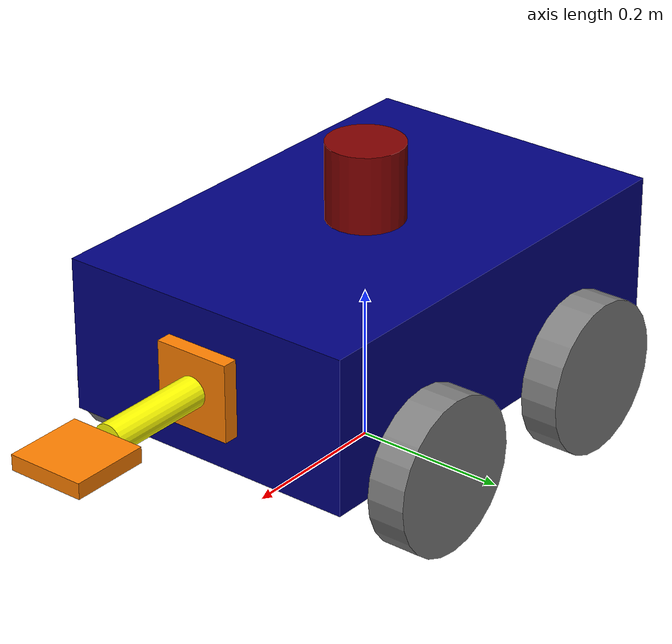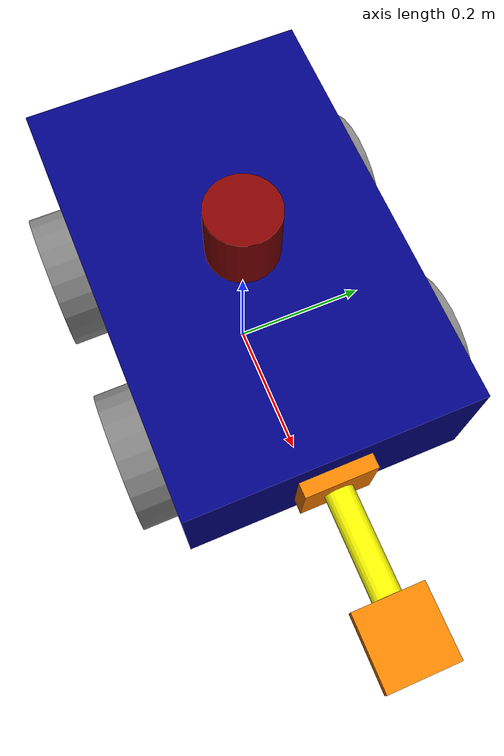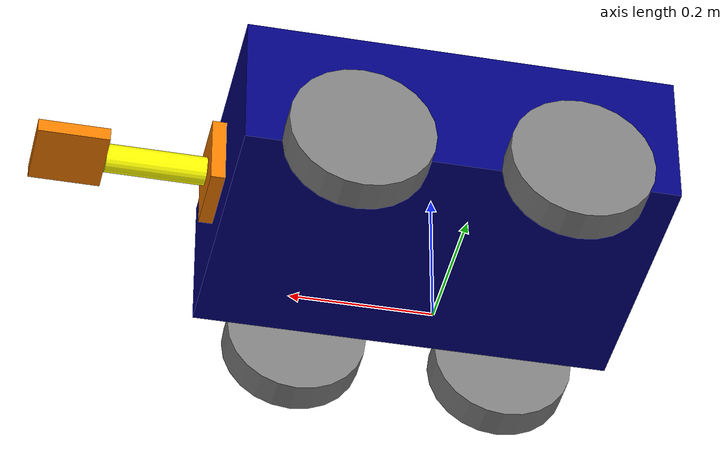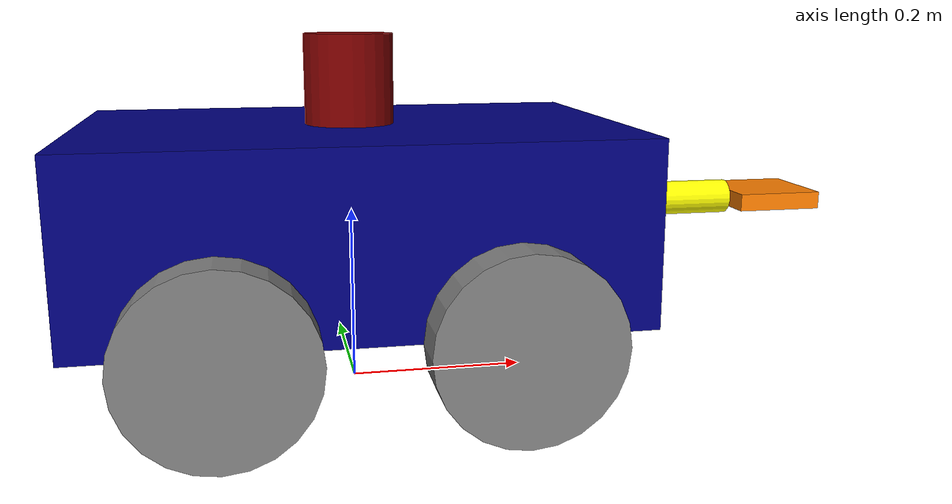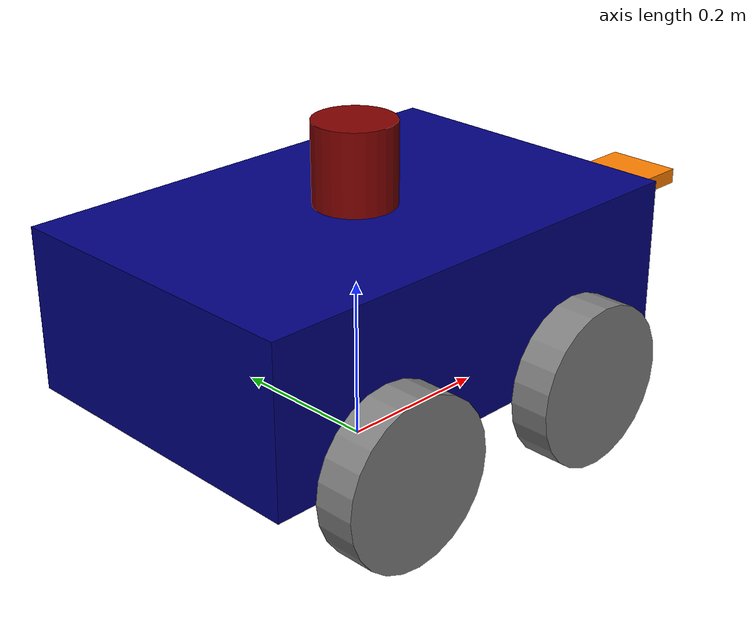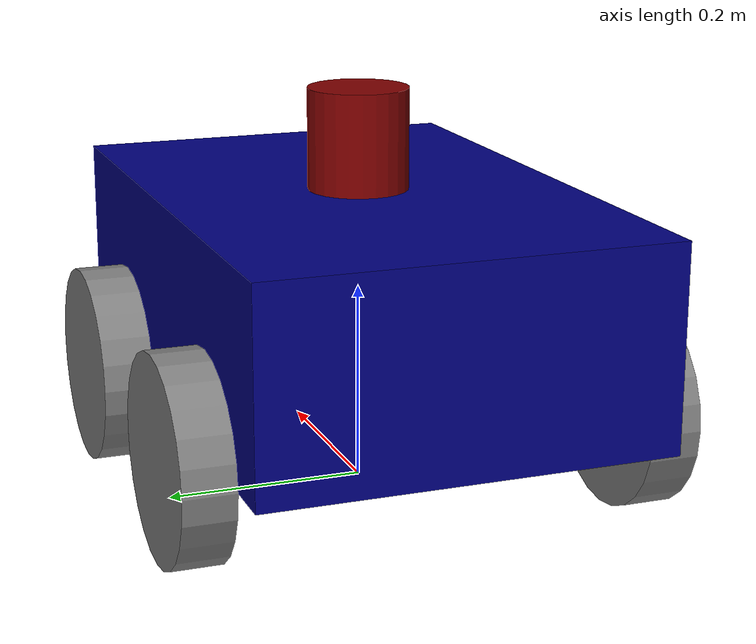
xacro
<?xml version="1.0"?>
<robot name="baldybot" xmlns:xacro="http://www.ros.org/wiki/xacro">

    <xacro:include filename="common_properties.xacro" />
    <xacro:include filename="mobile_base.xacro" />

    <xacro:include filename="mobile_base_gazebo.xacro" />

    <xacro:include filename="lidar.xacro" />

    <xacro:include filename="arm.xacro" />
    <xacro:include filename="arm_gazebo.xacro" />

</robot>

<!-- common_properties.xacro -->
<robot xmlns:xacro="http://www.ros.org/wiki/xacro">

    <material name="blue">
        <color rgba="0 0 0.5 1" />
    </material>

    <material name="grey">
        <color rgba="0.5 0.5 0.5 1" />
    </material>

    <material name="red">
        <color rgba="0.5 0 0 1" />
    </material>

    <material name="yellow">
        <color rgba="1 1 0 1"/>
    </material>

    <material name="orange">
        <color rgba="1 0.5 0 1"/>
    </material>

    <xacro:macro name="box_inertia" params="m l w h xyz rpy">
        <inertial>
            <origin xyz="${xyz}" rpy="${rpy}" />
            <mass value="${m}" />
            <inertia ixx="${(m/12) * (h*h + l*l)}" ixy="0" ixz="0"
                     iyy="${(m/12) * (w*w + l*l)}" iyz="0"
                     izz="${(m/12) * (w*w + h*h)}" />
        </inertial>
    </xacro:macro>

    <xacro:macro name="cylinder_inertia" params="m r h xyz rpy">
        <inertial>
            <origin xyz="${xyz}" rpy="${rpy}" />
            <mass value="${m}" />
            <inertia ixx="${(m/12) * (3*r*r + h*h)}" ixy="0" ixz="0"
                     iyy="${(m/12) * (3*r*r + h*h)}" iyz="0"
                     izz="${(m/2) * (r*r)}" />
        </inertial>
    </xacro:macro>

    <xacro:macro name="sphere_inertia" params="m r xyz rpy">
        <inertial>
            <origin xyz="${xyz}" rpy="${rpy}" />
            <mass value="${m}" />
            <inertia ixx="${(2/5) * m * r * r}" ixy="0" ixz="0"
                     iyy="${(2/5) * m * r * r}" iyz="0"
                     izz="${(2/5) * m * r * r}" />
        </inertial>
    </xacro:macro>

</robot>

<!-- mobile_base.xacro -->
<robot xmlns:xacro="http://www.ros.org/wiki/xacro">

    <xacro:property name="base_length" value="0.6" />
    <xacro:property name="base_width" value="0.4" />
    <xacro:property name="base_height" value="0.2" />
    <xacro:property name="wheel_radius" value="0.1" />
    <xacro:property name="wheel_length" value="0.05" />

    <link name="base_footprint" />

    <link name="base_link">
        <visual>
            <geometry>
                <box size="${base_length} ${base_width} ${base_height}" />
            </geometry>
            <origin xyz="0 0 ${base_height / 2.0}" rpy="0 0 0" />
            <material name="blue" />
        </visual>
        <collision>
            <geometry>
                <box size="${base_length} ${base_width} ${base_height}" />
            </geometry>
            <origin xyz="0 0 ${base_height / 2.0}" rpy="0 0 0" />
        </collision>
        <!-- we mulitply all the parameters for the inertia by 2 in order to fix the drift problem -->
        <xacro:box_inertia m="5.0" l="${2*base_length}" w="${2*base_width}" h="${2*base_height}"
                           xyz="0 0 ${base_height / 2.0}" rpy="0 0 0" />
    </link>

    <xacro:macro name="wheel_link" params="prefix">
        <link name="${prefix}_wheel_link">
            <visual>
                <geometry>
                    <cylinder radius="${wheel_radius}" length="${wheel_length}" />
                </geometry>
                <origin xyz="0 0 0" rpy="${pi / 2.0} 0 0" />
                <material name="grey" />
            </visual>
            <collision>
                <geometry>
                    <cylinder radius="${wheel_radius}" length="${wheel_length}" />
                </geometry>
                <origin xyz="0 0 0" rpy="${pi / 2.0} 0 0" />
            </collision>
            <xacro:cylinder_inertia m="1.0" r="${2*wheel_radius}" h="${2*wheel_length}"
                                    xyz="0 0 0" rpy="${pi / 2.0} 0 0" />
        </link>
    </xacro:macro>

    <xacro:wheel_link prefix="right_front" />
    <xacro:wheel_link prefix="right_back" />
    <xacro:wheel_link prefix="left_front" />
    <xacro:wheel_link prefix="left_back" />

    <joint name="base_joint" type="fixed">
        <parent link="base_footprint" />
        <child link="base_link" />
        <origin xyz="0 0 ${wheel_radius}" rpy="0 0 0"/>
    </joint>

    <joint name="base_right_front_wheel_joint" type="continuous">
        <parent link="base_link" />
        <child link="right_front_wheel_link" />
        <origin xyz="${-base_length / 4.0} ${-(base_width + wheel_length) / 2.0} 0" rpy="0 0 0" />
        <axis xyz="0 1 0" />
    </joint>

    <joint name="base_right_back_wheel_joint" type="continuous">
        <parent link="base_link" />
        <child link="right_back_wheel_link" />
        <origin xyz="${base_length / 4.0} ${-(base_width + wheel_length) / 2.0} 0" rpy="0 0 0" />
        <axis xyz="0 1 0" />
    </joint>

    <joint name="base_left_front_wheel_joint" type="continuous">
        <parent link="base_link" />
        <child link="left_front_wheel_link" />
        <origin xyz="${-base_length / 4.0} ${(base_width + wheel_length) / 2.0} 0" rpy="0 0 0" />
        <axis xyz="0 1 0" />
    </joint>

    <joint name="base_left_back_wheel_joint" type="continuous">
        <parent link="base_link" />
        <child link="left_back_wheel_link" />
        <origin xyz="${base_length / 4.0} ${(base_width + wheel_length) / 2.0} 0" rpy="0 0 0" />
        <axis xyz="0 1 0" />
    </joint>

</robot>

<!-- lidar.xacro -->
<robot xmlns:xacro="http://www.ros.org/wiki/xacro">

    <xacro:property name="lidar_radius" value="0.05" />
    <xacro:property name="lidar_length" value="0.1" />

    <link name="lidar_link">
        <visual>
            <geometry>
                <cylinder radius="${lidar_radius}" length="${lidar_length}" />
            </geometry>
            <material name="red" />
        </visual>
        <collision>
            <geometry>
                <cylinder radius="${lidar_radius}" length="${lidar_length}" />
            </geometry>
            <origin xyz="0 0 0" rpy="0 0 0" />
        </collision>
        <xacro:cylinder_inertia m="1.0" r="${2*lidar_radius}" h="${2*lidar_length}"
                                xyz="0 0 0" rpy="0 0 0" />
    </link>

    <joint name="base_lidar_joint" type="fixed">
        <parent link="base_link" />
        <child link="lidar_link" />
        <origin xyz="0 0 ${base_height + lidar_length/2.0}" rpy="0 0 0" />
    </joint>

    <gazebo reference="lidar_link">
        <material>Gazebo/Red</material>
        <sensor name="laser" type="ray">
            <pose>0 0 0 0 0 0</pose>
            <visualize>true</visualize>
            <update_rate>10.0</update_rate>
            <ray>
                <scan>
                    <horizontal>
                        <samples>360</samples>
                        <min_angle>-3.14</min_angle>
                        <max_angle>3.14</max_angle>
                    </horizontal>
                </scan>
                <range>
                    <min>0.3</min>
                    <max>12</max>
                </range>
            </ray>
            <plugin name="laser_controller" filename="libgazebo_ros_ray_sensor.so">
                <ros>
                    <argument>~/out:=scan</argument>
                </ros>
                <output_type>sensor_msgs/LaserScan</output_type>
                <frame_name>lidar_link</frame_name>
            </plugin>
        </sensor>
    </gazebo>

</robot>

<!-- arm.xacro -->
<robot xmlns:xacro="http://www.ros.org/wiki/xacro">

    <xacro:property name="arm_base_length" value="0.1" />
    <xacro:property name="arm_base_width" value="0.1" />
    <xacro:property name="arm_base_height" value="0.02" />
    <xacro:property name="forearm_radius" value="0.02" />
    <xacro:property name="forearm_length" value="0.15" />

    <link name="arm_base_link">
        <visual>
            <geometry>
                <box size="${arm_base_length} ${arm_base_width} ${arm_base_height}" />
            </geometry>
            <origin xyz="0 0 0" rpy="0 0 0" />
            <material name="orange" />
        </visual>
        <collision>
            <geometry>
                <box size="${arm_base_length} ${arm_base_width} ${arm_base_height}" />
            </geometry>
            <origin xyz="0 0 0" rpy="0 0 0" />
        </collision>
        <xacro:box_inertia m="0.5" l="${2*arm_base_length}" w="${2*arm_base_width}" h="${2*arm_base_height}"
                           xyz="0 0 0" rpy="0 0 0" />
    </link>

    <link name="forearm_link">
        <visual>
            <geometry>
                <cylinder radius="${forearm_radius}" length="${forearm_length}" />
            </geometry>
            <origin xyz="0 0 ${forearm_length/2}" rpy="0 0 0" />
            <material name="yellow" />
        </visual>
        <collision>
            <geometry>
                <cylinder radius="${forearm_radius}" length="${forearm_length}" />
            </geometry>
            <origin xyz="0 0 0" rpy="0 0 0" />
        </collision>
        <xacro:cylinder_inertia m="0.3" r="${2*forearm_radius}" h="${2*forearm_length}"
                                xyz="0 0 0" rpy="0 0 0" />
    </link>

    <link name="gripper_link">
        <visual>
            <geometry>
                <box size="0.02 0.1 0.1" />
            </geometry>
            <origin xyz="0 0 0.05" rpy="0 0 0" />
            <material name="orange" />
        </visual>
        <collision>
            <geometry>
                <box size="${1.5*arm_base_length} ${1.5*arm_base_width} ${arm_base_height}" />
            </geometry>
            <origin xyz="0 0 0" rpy="0 0 0" />
        </collision>
        <xacro:box_inertia m="0.5" l="${2*arm_base_length}" w="${2*arm_base_width}" h="${2*arm_base_height}"
                           xyz="0 0 0" rpy="0 0 0" />
    </link>

    <!-- comment this joint when using standalone arm  -->
    <joint name="base_arm_base" type="fixed">
        <parent link="base_link" />
        <child link="arm_base_link" />
        <origin xyz="${(base_length+arm_base_height)/2} 0 ${base_height/2}" rpy="0 ${pi/2} 0" />
    </joint>

    <joint name="arm_base_forearm_joint" type="revolute">
        <parent link="arm_base_link" />
        <child link="forearm_link" />
        <origin xyz="0 0 0" rpy="0 0 0" />
        <axis xyz="0 1 0" />
        <limit lower="${-pi/12}" upper="${pi/12}" effort="100" velocity="100" />
        <dynamics friction="0.05" damping="0.1" />
    </joint>

     <joint name="forearm_gripper_joint" type="revolute">
        <parent link="forearm_link" />
        <child link="gripper_link" />
        <origin xyz="0 0 ${forearm_length}" rpy="0 0 0" />
        <axis xyz="0 0 1" />
        <limit lower="0" upper="${pi/2}" effort="100" velocity="100" />
        <dynamics friction="0.05" damping="0.1" />
    </joint>

</robot>
